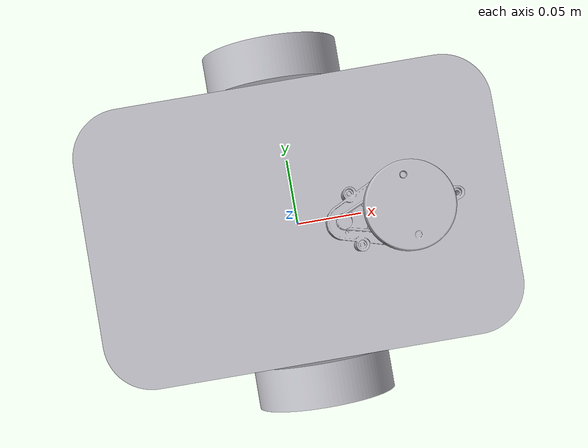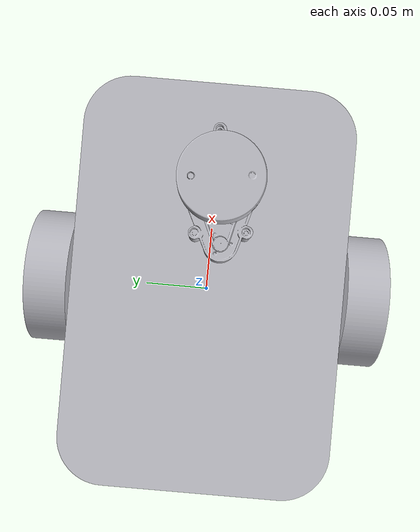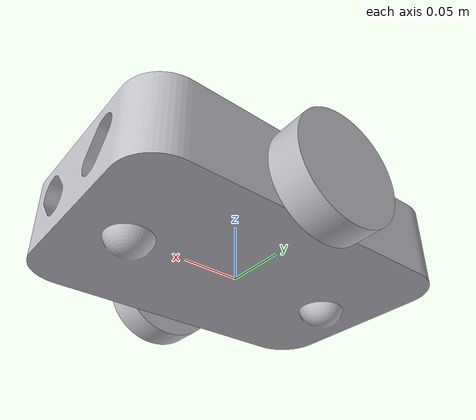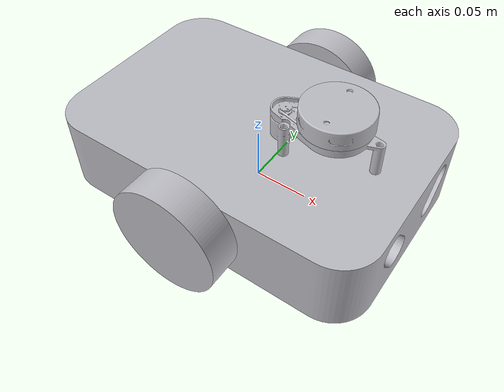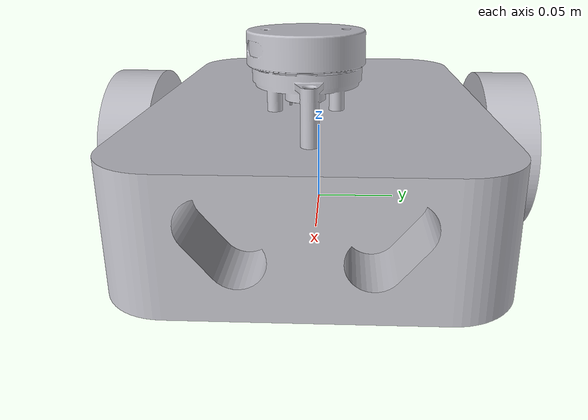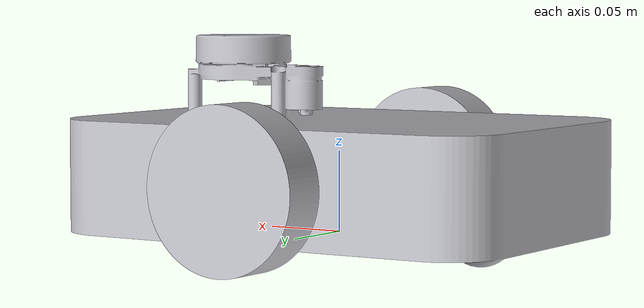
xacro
<?xml version="1.0" ?>
<robot name="agvrobot" xmlns:xacro="http://www.ros.org/wiki/xacro">

<xacro:include filename="$(find agvrobot_description)/urdf/materials.xacro" />
<xacro:include filename="$(find agvrobot_description)/urdf/agvrobot.trans" />
<xacro:include filename="$(find agvrobot_description)/urdf/agvrobot.gazebo" />
<link name="base_link">
  <inertial>
    <origin xyz="-0.002562742613472127 1.7874317879891475e-17 0.03471343370645569" rpy="0 0 0"/>
    <mass value="31.954375912490303"/>
    <inertia ixx="0.117535" iyy="0.239708" izz="0.330349" ixy="0.0" iyz="0.0" ixz="0.00027"/>
  </inertial>
  <visual>
    <origin xyz="0 0 0" rpy="0 0 0"/>
    <geometry>
      <mesh filename="package://agvrobot_description/meshes/base_link.stl" scale="0.001 0.001 0.001"/>
    </geometry>
    <material name="silver"/>
  </visual>
  <collision>
    <origin xyz="0 0 0" rpy="0 0 0"/>
    <geometry>
      <mesh filename="package://agvrobot_description/meshes/base_link.stl" scale="0.001 0.001 0.001"/>
    </geometry>
  </collision>
</link>

<link name="left_wheel_1">
  <inertial>
    <origin xyz="9.650038500203382e-18 -0.015 -1.3877787807814457e-17" rpy="0 0 0"/>
    <mass value="1.8496126748009902"/>
    <inertia ixx="0.001295" iyy="0.002312" izz="0.001295" ixy="-0.0" iyz="0.0" ixz="-0.0"/>
  </inertial>
  <visual>
    <origin xyz="-0.0 0.1 -0.035" rpy="0 0 0"/>
    <geometry>
      <mesh filename="package://agvrobot_description/meshes/left_wheel_1.stl" scale="0.001 0.001 0.001"/>
    </geometry>
    <material name="silver"/>
  </visual>
  <collision>
    <origin xyz="-0.0 0.1 -0.035" rpy="0 0 0"/>
    <geometry>
      <mesh filename="package://agvrobot_description/meshes/left_wheel_1.stl" scale="0.001 0.001 0.001"/>
    </geometry>
  </collision>
</link>

<link name="right_wheel_1">
  <inertial>
    <origin xyz="9.650038500203382e-18 0.015 6.938893903907228e-18" rpy="0 0 0"/>
    <mass value="1.8496126748009902"/>
    <inertia ixx="0.001295" iyy="0.002312" izz="0.001295" ixy="0.0" iyz="0.0" ixz="0.0"/>
  </inertial>
  <visual>
    <origin xyz="-0.0 -0.1 -0.035" rpy="0 0 0"/>
    <geometry>
      <mesh filename="package://agvrobot_description/meshes/right_wheel_1.stl" scale="0.001 0.001 0.001"/>
    </geometry>
    <material name="silver"/>
  </visual>
  <collision>
    <origin xyz="-0.0 -0.1 -0.035" rpy="0 0 0"/>
    <geometry>
      <mesh filename="package://agvrobot_description/meshes/right_wheel_1.stl" scale="0.001 0.001 0.001"/>
    </geometry>
  </collision>
</link>

<link name="lidar_bottom_1">
  <inertial>
    <origin xyz="0.05615755041336215 -0.004798912065879882 0.014919792402114385" rpy="0 0 0"/>
    <mass value="0.032841802013098984"/>
    <inertia ixx="1e-05" iyy="2.5e-05" izz="2.9e-05" ixy="-1e-06" iyz="-0.0" ixz="-2e-06"/>
  </inertial>
  <visual>
    <origin xyz="-0.0 -0.0 -0.07" rpy="0 0 0"/>
    <geometry>
      <mesh filename="package://agvrobot_description/meshes/lidar_bottom_1.stl" scale="0.001 0.001 0.001"/>
    </geometry>
    <material name="silver"/>
  </visual>
  <collision>
    <origin xyz="-0.0 -0.0 -0.07" rpy="0 0 0"/>
    <geometry>
      <mesh filename="package://agvrobot_description/meshes/lidar_bottom_1.stl" scale="0.001 0.001 0.001"/>
    </geometry>
  </collision>
</link>

<link name="lidar_top__1">
  <inertial>
    <origin xyz="-5.083590964040374e-05 3.6956508935475675e-05 0.007113364278068884" rpy="0 0 0"/>
    <mass value="0.34103550409015776"/>
    <inertia ixx="8.1e-05" iyy="8.1e-05" izz="0.000147" ixy="-0.0" iyz="-0.0" ixz="0.0"/>
  </inertial>
  <visual>
    <origin xyz="-0.074371 0.003523 -0.104" rpy="0 0 0"/>
    <geometry>
      <mesh filename="package://agvrobot_description/meshes/lidar_top__1.stl" scale="0.001 0.001 0.001"/>
    </geometry>
    <material name="silver"/>
  </visual>
  <collision>
    <origin xyz="-0.074371 0.003523 -0.104" rpy="0 0 0"/>
    <geometry>
      <mesh filename="package://agvrobot_description/meshes/lidar_top__1.stl" scale="0.001 0.001 0.001"/>
    </geometry>
  </collision>
</link>

<joint name="left_joint" type="continuous">
  <origin xyz="0.0 -0.1 0.035" rpy="0 0 0"/>
  <parent link="base_link"/>
  <child link="left_wheel_1"/>
  <axis xyz="0.0 -1.0 0.0"/>
</joint>

<joint name="right_joint" type="continuous">
  <origin xyz="0.0 0.1 0.035" rpy="0 0 0"/>
  <parent link="base_link"/>
  <child link="right_wheel_1"/>
  <axis xyz="0.0 1.0 0.0"/>
</joint>

<joint name="Rigid 3" type="fixed">
  <origin xyz="0.0 0.0 0.07" rpy="0 0 0"/>
  <parent link="base_link"/>
  <child link="lidar_bottom_1"/>
</joint>

<joint name="lidar_joint" type="continuous">
  <origin xyz="0.074371 -0.003523 0.034" rpy="0 0 0"/>
  <parent link="lidar_bottom_1"/>
  <child link="lidar_top__1"/>
  <axis xyz="0.0 0.0 -1.0"/>
</joint>

</robot>

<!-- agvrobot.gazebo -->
<robot name="agvrobot" xmlns:xacro="http://www.ros.org/wiki/xacro" >

<xacro:property name="body_color" value="Gazebo/Black" />
<xacro:property name="wheel" value="Gazebo/Black" />
<xacro:property name="lidar" value="Gazebo/Green" />

<gazebo>
  <plugin name="control" filename="libgazebo_ros_control.so"/>
</gazebo>
<gazebo reference="base_link">
  <material>${body_color}</material>
  <mu1>0.2</mu1>
  <mu2>0.2</mu2>
  <selfCollide>true</selfCollide>
  <gravity>true</gravity>
</gazebo>

<gazebo reference="lidar_top__1">
  <material>${lidar}</material>
  <mu1>0.2</mu1>
  <mu2>0.2</mu2>
  <selfCollide>true</selfCollide>
</gazebo>

<gazebo reference="lidar_bottom_1">
  <material>${wheel}</material>
  <mu1>0.2</mu1>
  <mu2>0.2</mu2>
  <selfCollide>true</selfCollide>
</gazebo>

<gazebo reference="right_wheel_1">
  <material>${wheel}</material>
  <mu1>0.2</mu1>
  <mu2>0.2</mu2>
  <selfCollide>true</selfCollide>
</gazebo>

<gazebo reference="left_wheel_1">
  <material>${wheel}</material>
  <mu1>0.2</mu1>
  <mu2>0.2</mu2>
  <selfCollide>true</selfCollide>
</gazebo>

<gazebo>
  <plugin name="differential_drive_controller" filename="libgazebo_ros_diff_drive.so">

    <!-- Plugin update rate in Hz -->
    <updateRate>20</updateRate>

    <!-- Name of left joint, defaults to left_joint -->
    <leftJoint>left_joint</leftJoint>

    <!-- Name of right joint, defaults to right_joint -->
    <rightJoint>right_joint</rightJoint>

    <!-- The distance from the center of one wheel to the other, in meters, defaults to 0.34 m -->
    <wheelSeparation>0.2</wheelSeparation>

    <!-- Diameter of the wheels, in meters, defaults to 0.15 m -->
    <wheelDiameter>0.1</wheelDiameter>

    <!-- Wheel acceleration, in rad/s^2, defaults to 0.0 rad/s^2 -->
    <wheelAcceleration>1.0</wheelAcceleration>

    <!-- Maximum torque which the wheels can produce, in Nm, defaults to 5 Nm -->
    <wheelTorque>20</wheelTorque>

    <!-- Topic to receive geometry_msgs/Twist message commands, defaults to cmd_vel -->
    <commandTopic>cmd_vel</commandTopic>

    <!-- Topic to publish nav_msgs/Odometry messages, defaults to odom -->
    <odometryTopic>odom</odometryTopic>

    <!-- Odometry frame, defaults to odom -->
    <odometryFrame>odom</odometryFrame>

    <!-- Robot frame to calculate odometry from, defaults to base_footprint -->
    <robotBaseFrame>base_footprint</robotBaseFrame>

    <!-- Odometry source, 0 for ENCODER, 1 for WORLD, defaults to WORLD -->
    <odometrySource>1</odometrySource>

    <!-- Set to true to publish transforms for the wheel links, defaults to false -->
    <publishWheelTF>true</publishWheelTF>

    <!-- Set to true to publish transforms for the odometry, defaults to true -->
    <publishOdom>true</publishOdom>

    <!-- Set to true to publish sensor_msgs/JointState on /joint_states for the wheel joints, defaults to false -->
    <publishWheelJointState>true</publishWheelJointState>

    <!-- Set to true to swap right and left wheels, defaults to true -->
    <legacyMode>false</legacyMode>
  </plugin>
</gazebo>

<gazebo reference="lidar_top__1">
  <sensor type="ray" name="head_hokuyo_sensor">
    <pose>0 0 0 0 0 0</pose>
    <visualize>true</visualize>
    <update_rate>20</update_rate>
    <ray>
      <scan>
        <horizontal>
          <samples>720</samples>
          <resolution>1</resolution>
          <min_angle>-3.14</min_angle>
          <max_angle>3.14</max_angle>
        </horizontal>
      </scan>
      <range>
        <min>0.5</min>
        <max>20.0</max>
        <resolution>0.01</resolution>
      </range>
      <noise>
        <type>gaussian</type>
        <mean>0.0</mean>
        <stddev>0.01</stddev>
      </noise>
    </ray>
    <plugin name="gazebo_ros_head_hokuyo_controller" filename="libgazebo_ros_laser.so">
      <topicName>/rrbot/laser/scan</topicName>
      <frameName>lidar_top__1</frameName>
    </plugin>
  </sensor>
</gazebo>

</robot>
